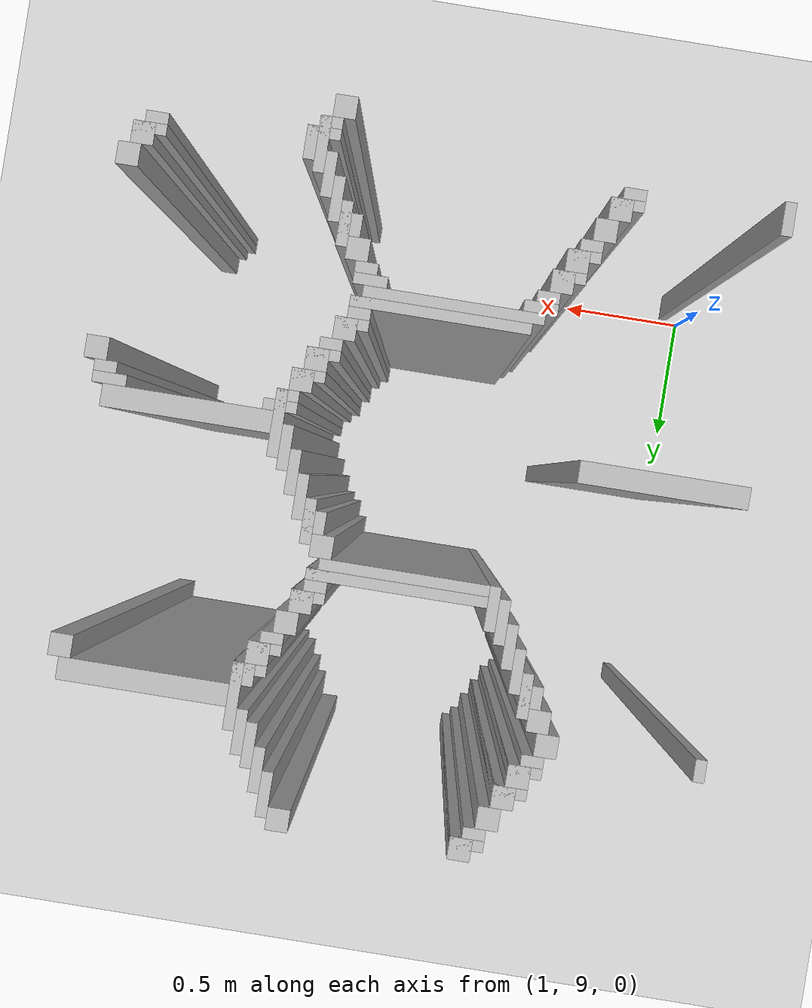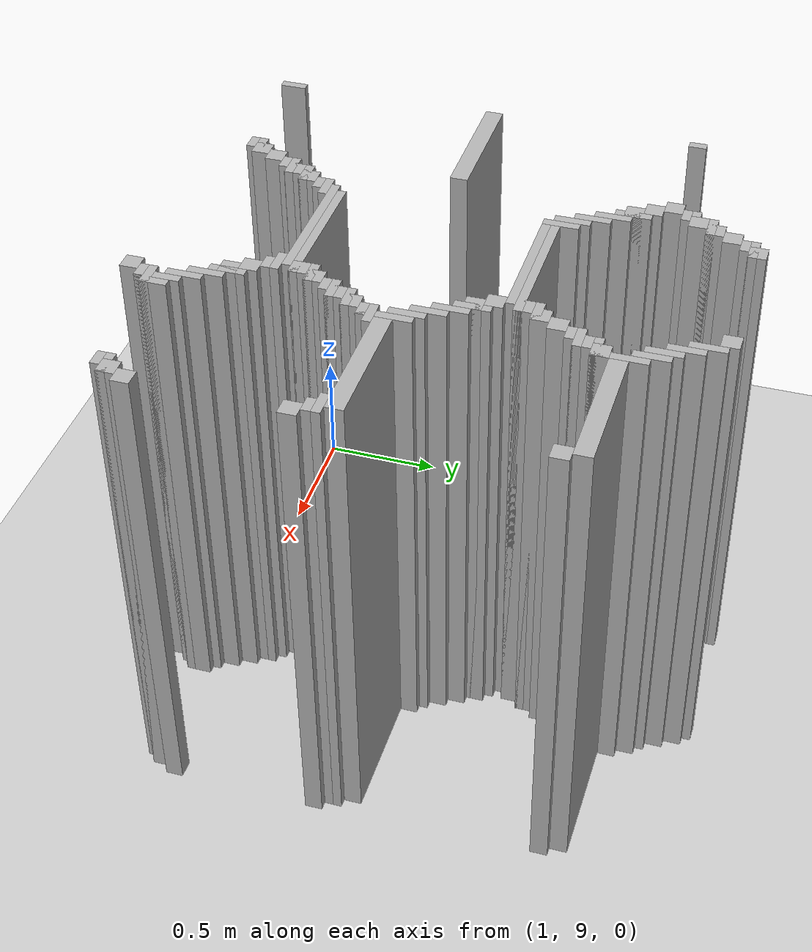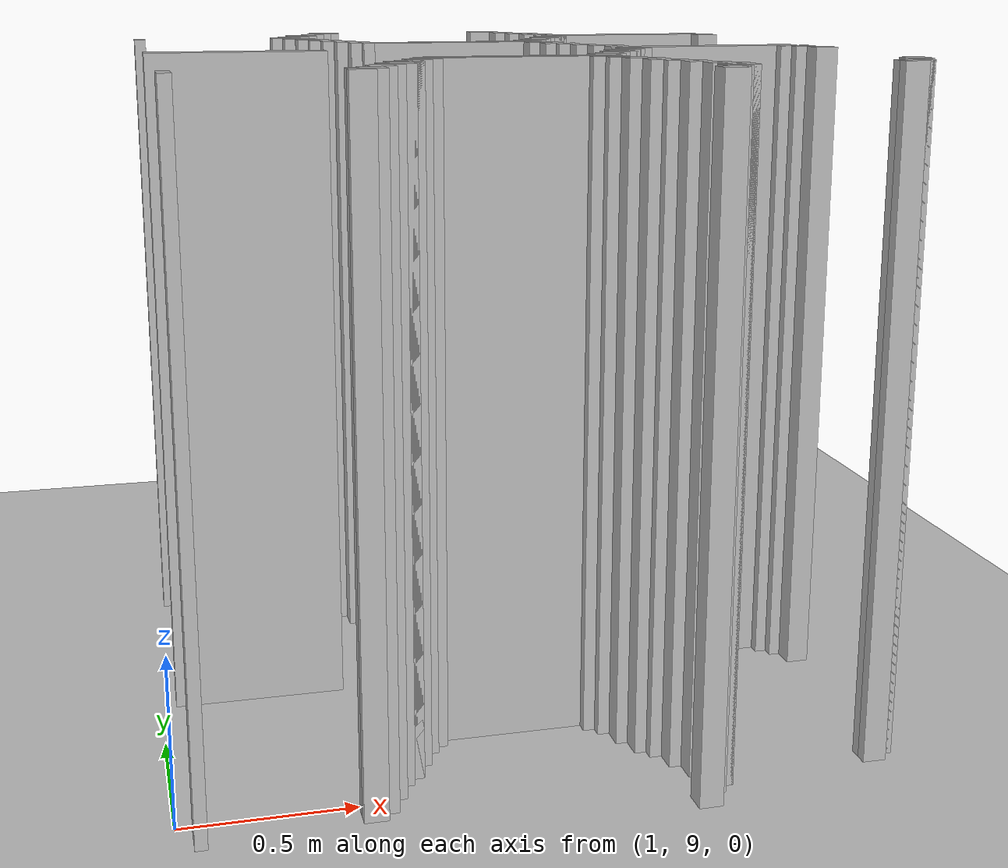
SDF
<sdf version="1.6">
 <world name="slam_world">
  <model name="ground_plane">
   <static>true</static>
   <link name="link">
    <collision name="collision">
     <geometry><plane><normal>0 0 1</normal><size>100 100</size></plane></geometry>
    </collision>
    <visual name="visual">
     <geometry><plane><normal>0 0 1</normal><size>100 100</size></plane></geometry>
     <material>
      <ambient>0.8 0.8 0.8 1</ambient>
      <diffuse>0.8 0.8 0.8 1</diffuse>
      <specular>0.8 0.8 0.8 1</specular>
     </material>
    </visual>
   </link>
  </model>
  <model name="wall_2175">
   <static>true</static>
   <pose>1.740139211136891 10.962877030162412 1.0 0 0 0</pose>
   <link name="link">
    <collision name="collision">
     <geometry><box><size>0.06960556844547564 0.06960556844547564 2.0</size></box></geometry>
    </collision>
    <visual name="visual">
     <geometry><box><size>0.06960556844547564 0.06960556844547564 2.0</size></box></geometry>
     <material><ambient>0.5 0.5 0.5 1</ambient><diffuse>0.7 0.7 0.7 1</diffuse></material>
    </visual>
   </link>
  </model>
  <model name="wall_2176">
   <static>true</static>
   <pose>2.296983758700696 10.962877030162412 1.0 0 0 0</pose>
   <link name="link">
    <collision name="collision">
     <geometry><box><size>0.06960556844547564 0.06960556844547564 2.0</size></box></geometry>
    </collision>
    <visual name="visual">
     <geometry><box><size>0.06960556844547564 0.06960556844547564 2.0</size></box></geometry>
     <material><ambient>0.5 0.5 0.5 1</ambient><diffuse>0.7 0.7 0.7 1</diffuse></material>
    </visual>
   </link>
  </model>
  <model name="wall_2190">
   <static>true</static>
   <pose>1.722737819025522 10.945475638051043 1.0 0 0 0</pose>
   <link name="link">
    <collision name="collision">
     <geometry><box><size>0.10440835266821345 0.03480278422273782 2.0</size></box></geometry>
    </collision>
    <visual name="visual">
     <geometry><box><size>0.10440835266821345 0.03480278422273782 2.0</size></box></geometry>
     <material><ambient>0.5 0.5 0.5 1</ambient><diffuse>0.7 0.7 0.7 1</diffuse></material>
    </visual>
   </link>
  </model>
  <model name="wall_2191">
   <static>true</static>
   <pose>2.3491879350348026 10.893271461716937 1.0 0 0 0</pose>
   <link name="link">
    <collision name="collision">
     <geometry><box><size>0.03480278422273782 0.13921113689095127 2.0</size></box></geometry>
    </collision>
    <visual name="visual">
     <geometry><box><size>0.03480278422273782 0.13921113689095127 2.0</size></box></geometry>
     <material><ambient>0.5 0.5 0.5 1</ambient><diffuse>0.7 0.7 0.7 1</diffuse></material>
    </visual>
   </link>
  </model>
  <model name="wall_2205">
   <static>true</static>
   <pose>1.705336426914153 10.910672853828306 1.0 0 0 0</pose>
   <link name="link">
    <collision name="collision">
     <geometry><box><size>0.06960556844547564 0.03480278422273782 2.0</size></box></geometry>
    </collision>
    <visual name="visual">
     <geometry><box><size>0.06960556844547564 0.03480278422273782 2.0</size></box></geometry>
     <material><ambient>0.5 0.5 0.5 1</ambient><diffuse>0.7 0.7 0.7 1</diffuse></material>
    </visual>
   </link>
  </model>
  <model name="wall_2215">
   <static>true</static>
   <pose>1.6705336426914152 10.8584686774942 1.0 0 0 0</pose>
   <link name="link">
    <collision name="collision">
     <geometry><box><size>0.06960556844547564 0.06960556844547564 2.0</size></box></geometry>
    </collision>
    <visual name="visual">
     <geometry><box><size>0.06960556844547564 0.06960556844547564 2.0</size></box></geometry>
     <material><ambient>0.5 0.5 0.5 1</ambient><diffuse>0.7 0.7 0.7 1</diffuse></material>
    </visual>
   </link>
  </model>
  <model name="wall_2216">
   <static>true</static>
   <pose>2.3839907192575405 10.82366589327146 1.0 0 0 0</pose>
   <link name="link">
    <collision name="collision">
     <geometry><box><size>0.03480278422273782 0.13921113689095127 2.0</size></box></geometry>
    </collision>
    <visual name="visual">
     <geometry><box><size>0.03480278422273782 0.13921113689095127 2.0</size></box></geometry>
     <material><ambient>0.5 0.5 0.5 1</ambient><diffuse>0.7 0.7 0.7 1</diffuse></material>
    </visual>
   </link>
  </model>
  <model name="wall_2230">
   <static>true</static>
   <pose>1.6357308584686774 10.788863109048723 1.0 0 0 0</pose>
   <link name="link">
    <collision name="collision">
     <geometry><box><size>0.06960556844547564 0.06960556844547564 2.0</size></box></geometry>
    </collision>
    <visual name="visual">
     <geometry><box><size>0.06960556844547564 0.06960556844547564 2.0</size></box></geometry>
     <material><ambient>0.5 0.5 0.5 1</ambient><diffuse>0.7 0.7 0.7 1</diffuse></material>
    </visual>
   </link>
  </model>
  <model name="wall_2231">
   <static>true</static>
   <pose>2.4187935034802783 10.754060324825986 1.0 0 0 0</pose>
   <link name="link">
    <collision name="collision">
     <geometry><box><size>0.03480278422273782 0.13921113689095127 2.0</size></box></geometry>
    </collision>
    <visual name="visual">
     <geometry><box><size>0.03480278422273782 0.13921113689095127 2.0</size></box></geometry>
     <material><ambient>0.5 0.5 0.5 1</ambient><diffuse>0.7 0.7 0.7 1</diffuse></material>
    </visual>
   </link>
  </model>
  <model name="wall_2245">
   <static>true</static>
   <pose>1.6183294663573085 10.771461716937354 1.0 0 0 0</pose>
   <link name="link">
    <collision name="collision">
     <geometry><box><size>0.10440835266821345 0.03480278422273782 2.0</size></box></geometry>
    </collision>
    <visual name="visual">
     <geometry><box><size>0.10440835266821345 0.03480278422273782 2.0</size></box></geometry>
     <material><ambient>0.5 0.5 0.5 1</ambient><diffuse>0.7 0.7 0.7 1</diffuse></material>
    </visual>
   </link>
  </model>
  <model name="wall_2246">
   <static>true</static>
   <pose>2.453596287703016 10.719257540603248 1.0 0 0 0</pose>
   <link name="link">
    <collision name="collision">
     <geometry><box><size>0.03480278422273782 0.13921113689095127 2.0</size></box></geometry>
    </collision>
    <visual name="visual">
     <geometry><box><size>0.03480278422273782 0.13921113689095127 2.0</size></box></geometry>
     <material><ambient>0.5 0.5 0.5 1</ambient><diffuse>0.7 0.7 0.7 1</diffuse></material>
    </visual>
   </link>
  </model>
  <model name="wall_2259">
   <static>true</static>
   <pose>1.6009280742459395 10.719257540603248 1.0 0 0 0</pose>
   <link name="link">
    <collision name="collision">
     <geometry><box><size>0.06960556844547564 0.06960556844547564 2.0</size></box></geometry>
    </collision>
    <visual name="visual">
     <geometry><box><size>0.06960556844547564 0.06960556844547564 2.0</size></box></geometry>
     <material><ambient>0.5 0.5 0.5 1</ambient><diffuse>0.7 0.7 0.7 1</diffuse></material>
    </visual>
   </link>
  </model>
  <model name="wall_2267">
   <static>true</static>
   <pose>1.5835266821345706 10.70185614849188 1.0 0 0 0</pose>
   <link name="link">
    <collision name="collision">
     <geometry><box><size>0.10440835266821345 0.03480278422273782 2.0</size></box></geometry>
    </collision>
    <visual name="visual">
     <geometry><box><size>0.10440835266821345 0.03480278422273782 2.0</size></box></geometry>
     <material><ambient>0.5 0.5 0.5 1</ambient><diffuse>0.7 0.7 0.7 1</diffuse></material>
    </visual>
   </link>
  </model>
  <model name="wall_2268">
   <static>true</static>
   <pose>2.488399071925754 10.614849187935034 1.0 0 0 0</pose>
   <link name="link">
    <collision name="collision">
     <geometry><box><size>0.03480278422273782 0.2088167053364269 2.0</size></box></geometry>
    </collision>
    <visual name="visual">
     <geometry><box><size>0.03480278422273782 0.2088167053364269 2.0</size></box></geometry>
     <material><ambient>0.5 0.5 0.5 1</ambient><diffuse>0.7 0.7 0.7 1</diffuse></material>
    </visual>
   </link>
  </model>
  <model name="wall_2281">
   <static>true</static>
   <pose>1.5661252900232019 10.66705336426914 1.0 0 0 0</pose>
   <link name="link">
    <collision name="collision">
     <geometry><box><size>0.06960556844547564 0.03480278422273782 2.0</size></box></geometry>
    </collision>
    <visual name="visual">
     <geometry><box><size>0.06960556844547564 0.03480278422273782 2.0</size></box></geometry>
     <material><ambient>0.5 0.5 0.5 1</ambient><diffuse>0.7 0.7 0.7 1</diffuse></material>
    </visual>
   </link>
  </model>
  <model name="wall_2288">
   <static>true</static>
   <pose>1.0614849187935034 10.614849187935034 1.0 0 0 0</pose>
   <link name="link">
    <collision name="collision">
     <geometry><box><size>0.03480278422273782 0.06960556844547564 2.0</size></box></geometry>
    </collision>
    <visual name="visual">
     <geometry><box><size>0.03480278422273782 0.06960556844547564 2.0</size></box></geometry>
     <material><ambient>0.5 0.5 0.5 1</ambient><diffuse>0.7 0.7 0.7 1</diffuse></material>
    </visual>
   </link>
  </model>
  <model name="wall_2289">
   <static>true</static>
   <pose>1.531322505800464 10.614849187935034 1.0 0 0 0</pose>
   <link name="link">
    <collision name="collision">
     <geometry><box><size>0.06960556844547564 0.06960556844547564 2.0</size></box></geometry>
    </collision>
    <visual name="visual">
     <geometry><box><size>0.06960556844547564 0.06960556844547564 2.0</size></box></geometry>
     <material><ambient>0.5 0.5 0.5 1</ambient><diffuse>0.7 0.7 0.7 1</diffuse></material>
    </visual>
   </link>
  </model>
  <model name="wall_2290">
   <static>true</static>
   <pose>2.7668213457076565 10.614849187935034 1.0 0 0 0</pose>
   <link name="link">
    <collision name="collision">
     <geometry><box><size>0.5220417633410672 0.06960556844547564 2.0</size></box></geometry>
    </collision>
    <visual name="visual">
     <geometry><box><size>0.5220417633410672 0.06960556844547564 2.0</size></box></geometry>
     <material><ambient>0.5 0.5 0.5 1</ambient><diffuse>0.7 0.7 0.7 1</diffuse></material>
    </visual>
   </link>
  </model>
  <model name="wall_2303">
   <static>true</static>
   <pose>1.5661252900232019 10.54524361948956 1.0 0 0 0</pose>
   <link name="link">
    <collision name="collision">
     <geometry><box><size>0.06960556844547564 0.06960556844547564 2.0</size></box></geometry>
    </collision>
    <visual name="visual">
     <geometry><box><size>0.06960556844547564 0.06960556844547564 2.0</size></box></geometry>
     <material><ambient>0.5 0.5 0.5 1</ambient><diffuse>0.7 0.7 0.7 1</diffuse></material>
    </visual>
   </link>
  </model>
  <model name="wall_2304">
   <static>true</static>
   <pose>2.470997679814385 10.54524361948956 1.0 0 0 0</pose>
   <link name="link">
    <collision name="collision">
     <geometry><box><size>0.06960556844547564 0.06960556844547564 2.0</size></box></geometry>
    </collision>
    <visual name="visual">
     <geometry><box><size>0.06960556844547564 0.06960556844547564 2.0</size></box></geometry>
     <material><ambient>0.5 0.5 0.5 1</ambient><diffuse>0.7 0.7 0.7 1</diffuse></material>
    </visual>
   </link>
  </model>
  <model name="wall_2305">
   <static>true</static>
   <pose>3.02784222737819 10.54524361948956 1.0 0 0 0</pose>
   <link name="link">
    <collision name="collision">
     <geometry><box><size>0.06960556844547564 0.06960556844547564 2.0</size></box></geometry>
    </collision>
    <visual name="visual">
     <geometry><box><size>0.06960556844547564 0.06960556844547564 2.0</size></box></geometry>
     <material><ambient>0.5 0.5 0.5 1</ambient><diffuse>0.7 0.7 0.7 1</diffuse></material>
    </visual>
   </link>
  </model>
  <model name="wall_2318">
   <static>true</static>
   <pose>1.6183294663573085 10.475638051044083 1.0 0 0 0</pose>
   <link name="link">
    <collision name="collision">
     <geometry><box><size>0.03480278422273782 0.13921113689095127 2.0</size></box></geometry>
    </collision>
    <visual name="visual">
     <geometry><box><size>0.03480278422273782 0.13921113689095127 2.0</size></box></geometry>
     <material><ambient>0.5 0.5 0.5 1</ambient><diffuse>0.7 0.7 0.7 1</diffuse></material>
    </visual>
   </link>
  </model>
  <model name="wall_2319">
   <static>true</static>
   <pose>2.453596287703016 10.52784222737819 1.0 0 0 0</pose>
   <link name="link">
    <collision name="collision">
     <geometry><box><size>0.10440835266821345 0.03480278422273782 2.0</size></box></geometry>
    </collision>
    <visual name="visual">
     <geometry><box><size>0.10440835266821345 0.03480278422273782 2.0</size></box></geometry>
     <material><ambient>0.5 0.5 0.5 1</ambient><diffuse>0.7 0.7 0.7 1</diffuse></material>
    </visual>
   </link>
  </model>
  <model name="wall_2333">
   <static>true</static>
   <pose>1.6009280742459395 10.475638051044083 1.0 0 0 0</pose>
   <link name="link">
    <collision name="collision">
     <geometry><box><size>0.06960556844547564 0.06960556844547564 2.0</size></box></geometry>
    </collision>
    <visual name="visual">
     <geometry><box><size>0.06960556844547564 0.06960556844547564 2.0</size></box></geometry>
     <material><ambient>0.5 0.5 0.5 1</ambient><diffuse>0.7 0.7 0.7 1</diffuse></material>
    </visual>
   </link>
  </model>
  <model name="wall_2334">
   <static>true</static>
   <pose>2.436194895591647 10.475638051044083 1.0 0 0 0</pose>
   <link name="link">
    <collision name="collision">
     <geometry><box><size>0.06960556844547564 0.06960556844547564 2.0</size></box></geometry>
    </collision>
    <visual name="visual">
     <geometry><box><size>0.06960556844547564 0.06960556844547564 2.0</size></box></geometry>
     <material><ambient>0.5 0.5 0.5 1</ambient><diffuse>0.7 0.7 0.7 1</diffuse></material>
    </visual>
   </link>
  </model>
  <model name="wall_2348">
   <static>true</static>
   <pose>1.6531322505800463 10.406032482598608 1.0 0 0 0</pose>
   <link name="link">
    <collision name="collision">
     <geometry><box><size>0.03480278422273782 0.13921113689095127 2.0</size></box></geometry>
    </collision>
    <visual name="visual">
     <geometry><box><size>0.03480278422273782 0.13921113689095127 2.0</size></box></geometry>
     <material><ambient>0.5 0.5 0.5 1</ambient><diffuse>0.7 0.7 0.7 1</diffuse></material>
    </visual>
   </link>
  </model>
  <model name="wall_2349">
   <static>true</static>
   <pose>2.4187935034802783 10.458236658932714 1.0 0 0 0</pose>
   <link name="link">
    <collision name="collision">
     <geometry><box><size>0.10440835266821345 0.03480278422273782 2.0</size></box></geometry>
    </collision>
    <visual name="visual">
     <geometry><box><size>0.10440835266821345 0.03480278422273782 2.0</size></box></geometry>
     <material><ambient>0.5 0.5 0.5 1</ambient><diffuse>0.7 0.7 0.7 1</diffuse></material>
    </visual>
   </link>
  </model>
  <model name="wall_2362">
   <static>true</static>
   <pose>2.4013921113689096 10.423433874709977 1.0 0 0 0</pose>
   <link name="link">
    <collision name="collision">
     <geometry><box><size>0.06960556844547564 0.03480278422273782 2.0</size></box></geometry>
    </collision>
    <visual name="visual">
     <geometry><box><size>0.06960556844547564 0.03480278422273782 2.0</size></box></geometry>
     <material><ambient>0.5 0.5 0.5 1</ambient><diffuse>0.7 0.7 0.7 1</diffuse></material>
    </visual>
   </link>
  </model>
  <model name="wall_2368">
   <static>true</static>
   <pose>1.6879350348027842 10.336426914153131 1.0 0 0 0</pose>
   <link name="link">
    <collision name="collision">
     <geometry><box><size>0.03480278422273782 0.13921113689095127 2.0</size></box></geometry>
    </collision>
    <visual name="visual">
     <geometry><box><size>0.03480278422273782 0.13921113689095127 2.0</size></box></geometry>
     <material><ambient>0.5 0.5 0.5 1</ambient><diffuse>0.7 0.7 0.7 1</diffuse></material>
    </visual>
   </link>
  </model>
  <model name="wall_2369">
   <static>true</static>
   <pose>2.3665893271461718 10.37122969837587 1.0 0 0 0</pose>
   <link name="link">
    <collision name="collision">
     <geometry><box><size>0.06960556844547564 0.06960556844547564 2.0</size></box></geometry>
    </collision>
    <visual name="visual">
     <geometry><box><size>0.06960556844547564 0.06960556844547564 2.0</size></box></geometry>
     <material><ambient>0.5 0.5 0.5 1</ambient><diffuse>0.7 0.7 0.7 1</diffuse></material>
    </visual>
   </link>
  </model>
  <model name="wall_2383">
   <static>true</static>
   <pose>1.722737819025522 10.266821345707656 1.0 0 0 0</pose>
   <link name="link">
    <collision name="collision">
     <geometry><box><size>0.03480278422273782 0.13921113689095127 2.0</size></box></geometry>
    </collision>
    <visual name="visual">
     <geometry><box><size>0.03480278422273782 0.13921113689095127 2.0</size></box></geometry>
     <material><ambient>0.5 0.5 0.5 1</ambient><diffuse>0.7 0.7 0.7 1</diffuse></material>
    </visual>
   </link>
  </model>
  <model name="wall_2384">
   <static>true</static>
   <pose>2.331786542923434 10.301624129930394 1.0 0 0 0</pose>
   <link name="link">
    <collision name="collision">
     <geometry><box><size>0.06960556844547564 0.06960556844547564 2.0</size></box></geometry>
    </collision>
    <visual name="visual">
     <geometry><box><size>0.06960556844547564 0.06960556844547564 2.0</size></box></geometry>
     <material><ambient>0.5 0.5 0.5 1</ambient><diffuse>0.7 0.7 0.7 1</diffuse></material>
    </visual>
   </link>
  </model>
  <model name="wall_2398">
   <static>true</static>
   <pose>1.75754060324826 10.232018561484919 1.0 0 0 0</pose>
   <link name="link">
    <collision name="collision">
     <geometry><box><size>0.03480278422273782 0.13921113689095127 2.0</size></box></geometry>
    </collision>
    <visual name="visual">
     <geometry><box><size>0.03480278422273782 0.13921113689095127 2.0</size></box></geometry>
     <material><ambient>0.5 0.5 0.5 1</ambient><diffuse>0.7 0.7 0.7 1</diffuse></material>
    </visual>
   </link>
  </model>
  <model name="wall_2399">
   <static>true</static>
   <pose>2.3143851508120648 10.284222737819025 1.0 0 0 0</pose>
   <link name="link">
    <collision name="collision">
     <geometry><box><size>0.10440835266821345 0.03480278422273782 2.0</size></box></geometry>
    </collision>
    <visual name="visual">
     <geometry><box><size>0.10440835266821345 0.03480278422273782 2.0</size></box></geometry>
     <material><ambient>0.5 0.5 0.5 1</ambient><diffuse>0.7 0.7 0.7 1</diffuse></material>
    </visual>
   </link>
  </model>
  <model name="wall_2412">
   <static>true</static>
   <pose>2.296983758700696 10.232018561484919 1.0 0 0 0</pose>
   <link name="link">
    <collision name="collision">
     <geometry><box><size>0.06960556844547564 0.06960556844547564 2.0</size></box></geometry>
    </collision>
    <visual name="visual">
     <geometry><box><size>0.06960556844547564 0.06960556844547564 2.0</size></box></geometry>
     <material><ambient>0.5 0.5 0.5 1</ambient><diffuse>0.7 0.7 0.7 1</diffuse></material>
    </visual>
   </link>
  </model>
  <model name="wall_2419">
   <static>true</static>
   <pose>2.053364269141531 10.214617169373549 1.0 0 0 0</pose>
   <link name="link">
    <collision name="collision">
     <geometry><box><size>0.5568445475638051 0.03480278422273782 2.0</size></box></geometry>
    </collision>
    <visual name="visual">
     <geometry><box><size>0.5568445475638051 0.03480278422273782 2.0</size></box></geometry>
     <material><ambient>0.5 0.5 0.5 1</ambient><diffuse>0.7 0.7 0.7 1</diffuse></material>
    </visual>
   </link>
  </model>
  <model name="wall_2433">
   <static>true</static>
   <pose>2.0359628770301623 10.179814385150811 1.0 0 0 0</pose>
   <link name="link">
    <collision name="collision">
     <geometry><box><size>0.5220417633410672 0.03480278422273782 2.0</size></box></geometry>
    </collision>
    <visual name="visual">
     <geometry><box><size>0.5220417633410672 0.03480278422273782 2.0</size></box></geometry>
     <material><ambient>0.5 0.5 0.5 1</ambient><diffuse>0.7 0.7 0.7 1</diffuse></material>
    </visual>
   </link>
  </model>
  <model name="wall_2440">
   <static>true</static>
   <pose>2.296983758700696 10.127610208816705 1.0 0 0 0</pose>
   <link name="link">
    <collision name="collision">
     <geometry><box><size>0.06960556844547564 0.06960556844547564 2.0</size></box></geometry>
    </collision>
    <visual name="visual">
     <geometry><box><size>0.06960556844547564 0.06960556844547564 2.0</size></box></geometry>
     <material><ambient>0.5 0.5 0.5 1</ambient><diffuse>0.7 0.7 0.7 1</diffuse></material>
    </visual>
   </link>
  </model>
  <model name="wall_2454">
   <static>true</static>
   <pose>2.3491879350348026 10.058004640371228 1.0 0 0 0</pose>
   <link name="link">
    <collision name="collision">
     <geometry><box><size>0.03480278422273782 0.13921113689095127 2.0</size></box></geometry>
    </collision>
    <visual name="visual">
     <geometry><box><size>0.03480278422273782 0.13921113689095127 2.0</size></box></geometry>
     <material><ambient>0.5 0.5 0.5 1</ambient><diffuse>0.7 0.7 0.7 1</diffuse></material>
    </visual>
   </link>
  </model>
  <model name="wall_2468">
   <static>true</static>
   <pose>2.331786542923434 10.058004640371228 1.0 0 0 0</pose>
   <link name="link">
    <collision name="collision">
     <geometry><box><size>0.06960556844547564 0.06960556844547564 2.0</size></box></geometry>
    </collision>
    <visual name="visual">
     <geometry><box><size>0.06960556844547564 0.06960556844547564 2.0</size></box></geometry>
     <material><ambient>0.5 0.5 0.5 1</ambient><diffuse>0.7 0.7 0.7 1</diffuse></material>
    </visual>
   </link>
  </model>
  <model name="wall_2482">
   <static>true</static>
   <pose>2.3839907192575405 9.988399071925754 1.0 0 0 0</pose>
   <link name="link">
    <collision name="collision">
     <geometry><box><size>0.03480278422273782 0.13921113689095127 2.0</size></box></geometry>
    </collision>
    <visual name="visual">
     <geometry><box><size>0.03480278422273782 0.13921113689095127 2.0</size></box></geometry>
     <material><ambient>0.5 0.5 0.5 1</ambient><diffuse>0.7 0.7 0.7 1</diffuse></material>
    </visual>
   </link>
  </model>
  <model name="wall_2505">
   <static>true</static>
   <pose>2.4187935034802783 9.918793503480279 1.0 0 0 0</pose>
   <link name="link">
    <collision name="collision">
     <geometry><box><size>0.03480278422273782 0.13921113689095127 2.0</size></box></geometry>
    </collision>
    <visual name="visual">
     <geometry><box><size>0.03480278422273782 0.13921113689095127 2.0</size></box></geometry>
     <material><ambient>0.5 0.5 0.5 1</ambient><diffuse>0.7 0.7 0.7 1</diffuse></material>
    </visual>
   </link>
  </model>
  <model name="wall_2519">
   <static>true</static>
   <pose>2.453596287703016 9.849187935034802 1.0 0 0 0</pose>
   <link name="link">
    <collision name="collision">
     <geometry><box><size>0.03480278422273782 0.13921113689095127 2.0</size></box></geometry>
    </collision>
    <visual name="visual">
     <geometry><box><size>0.03480278422273782 0.13921113689095127 2.0</size></box></geometry>
     <material><ambient>0.5 0.5 0.5 1</ambient><diffuse>0.7 0.7 0.7 1</diffuse></material>
    </visual>
   </link>
  </model>
  <model name="wall_2533">
   <static>true</static>
   <pose>2.488399071925754 9.779582366589327 1.0 0 0 0</pose>
   <link name="link">
    <collision name="collision">
     <geometry><box><size>0.03480278422273782 0.2088167053364269 2.0</size></box></geometry>
    </collision>
    <visual name="visual">
     <geometry><box><size>0.03480278422273782 0.2088167053364269 2.0</size></box></geometry>
     <material><ambient>0.5 0.5 0.5 1</ambient><diffuse>0.7 0.7 0.7 1</diffuse></material>
    </visual>
   </link>
  </model>
  <model name="wall_2555">
   <static>true</static>
   <pose>1.3051044083526682 9.779582366589327 1.0 0 0 0</pose>
   <link name="link">
    <collision name="collision">
     <geometry><box><size>0.5220417633410672 0.06960556844547564 2.0</size></box></geometry>
    </collision>
    <visual name="visual">
     <geometry><box><size>0.5220417633410672 0.06960556844547564 2.0</size></box></geometry>
     <material><ambient>0.5 0.5 0.5 1</ambient><diffuse>0.7 0.7 0.7 1</diffuse></material>
    </visual>
   </link>
  </model>
  <model name="wall_2556">
   <static>true</static>
   <pose>2.7668213457076565 9.779582366589327 1.0 0 0 0</pose>
   <link name="link">
    <collision name="collision">
     <geometry><box><size>0.5220417633410672 0.06960556844547564 2.0</size></box></geometry>
    </collision>
    <visual name="visual">
     <geometry><box><size>0.5220417633410672 0.06960556844547564 2.0</size></box></geometry>
     <material><ambient>0.5 0.5 0.5 1</ambient><diffuse>0.7 0.7 0.7 1</diffuse></material>
    </visual>
   </link>
  </model>
  <model name="wall_2577">
   <static>true</static>
   <pose>2.488399071925754 9.72737819025522 1.0 0 0 0</pose>
   <link name="link">
    <collision name="collision">
     <geometry><box><size>0.10440835266821345 0.03480278422273782 2.0</size></box></geometry>
    </collision>
    <visual name="visual">
     <geometry><box><size>0.10440835266821345 0.03480278422273782 2.0</size></box></geometry>
     <material><ambient>0.5 0.5 0.5 1</ambient><diffuse>0.7 0.7 0.7 1</diffuse></material>
    </visual>
   </link>
  </model>
  <model name="wall_2578">
   <static>true</static>
   <pose>3.010440835266821 9.72737819025522 1.0 0 0 0</pose>
   <link name="link">
    <collision name="collision">
     <geometry><box><size>0.10440835266821345 0.03480278422273782 2.0</size></box></geometry>
    </collision>
    <visual name="visual">
     <geometry><box><size>0.10440835266821345 0.03480278422273782 2.0</size></box></geometry>
     <material><ambient>0.5 0.5 0.5 1</ambient><diffuse>0.7 0.7 0.7 1</diffuse></material>
    </visual>
   </link>
  </model>
  <model name="wall_2590">
   <static>true</static>
   <pose>2.470997679814385 9.692575406032482 1.0 0 0 0</pose>
   <link name="link">
    <collision name="collision">
     <geometry><box><size>0.06960556844547564 0.03480278422273782 2.0</size></box></geometry>
    </collision>
    <visual name="visual">
     <geometry><box><size>0.06960556844547564 0.03480278422273782 2.0</size></box></geometry>
     <material><ambient>0.5 0.5 0.5 1</ambient><diffuse>0.7 0.7 0.7 1</diffuse></material>
    </visual>
   </link>
  </model>
  <model name="wall_2591">
   <static>true</static>
   <pose>3.02784222737819 9.692575406032482 1.0 0 0 0</pose>
   <link name="link">
    <collision name="collision">
     <geometry><box><size>0.06960556844547564 0.03480278422273782 2.0</size></box></geometry>
    </collision>
    <visual name="visual">
     <geometry><box><size>0.06960556844547564 0.03480278422273782 2.0</size></box></geometry>
     <material><ambient>0.5 0.5 0.5 1</ambient><diffuse>0.7 0.7 0.7 1</diffuse></material>
    </visual>
   </link>
  </model>
  <model name="wall_2602">
   <static>true</static>
   <pose>2.436194895591647 9.640371229698376 1.0 0 0 0</pose>
   <link name="link">
    <collision name="collision">
     <geometry><box><size>0.06960556844547564 0.06960556844547564 2.0</size></box></geometry>
    </collision>
    <visual name="visual">
     <geometry><box><size>0.06960556844547564 0.06960556844547564 2.0</size></box></geometry>
     <material><ambient>0.5 0.5 0.5 1</ambient><diffuse>0.7 0.7 0.7 1</diffuse></material>
    </visual>
   </link>
  </model>
  <model name="wall_2603">
   <static>true</static>
   <pose>3.062645011600928 9.640371229698376 1.0 0 0 0</pose>
   <link name="link">
    <collision name="collision">
     <geometry><box><size>0.06960556844547564 0.06960556844547564 2.0</size></box></geometry>
    </collision>
    <visual name="visual">
     <geometry><box><size>0.06960556844547564 0.06960556844547564 2.0</size></box></geometry>
     <material><ambient>0.5 0.5 0.5 1</ambient><diffuse>0.7 0.7 0.7 1</diffuse></material>
    </visual>
   </link>
  </model>
  <model name="wall_2616">
   <static>true</static>
   <pose>2.4187935034802783 9.622969837587007 1.0 0 0 0</pose>
   <link name="link">
    <collision name="collision">
     <geometry><box><size>0.10440835266821345 0.03480278422273782 2.0</size></box></geometry>
    </collision>
    <visual name="visual">
     <geometry><box><size>0.10440835266821345 0.03480278422273782 2.0</size></box></geometry>
     <material><ambient>0.5 0.5 0.5 1</ambient><diffuse>0.7 0.7 0.7 1</diffuse></material>
    </visual>
   </link>
  </model>
  <model name="wall_2630">
   <static>true</static>
   <pose>2.4013921113689096 9.5707656612529 1.0 0 0 0</pose>
   <link name="link">
    <collision name="collision">
     <geometry><box><size>0.06960556844547564 0.06960556844547564 2.0</size></box></geometry>
    </collision>
    <visual name="visual">
     <geometry><box><size>0.06960556844547564 0.06960556844547564 2.0</size></box></geometry>
     <material><ambient>0.5 0.5 0.5 1</ambient><diffuse>0.7 0.7 0.7 1</diffuse></material>
    </visual>
   </link>
  </model>
  <model name="wall_2644">
   <static>true</static>
   <pose>2.3839907192575405 9.55336426914153 1.0 0 0 0</pose>
   <link name="link">
    <collision name="collision">
     <geometry><box><size>0.10440835266821345 0.03480278422273782 2.0</size></box></geometry>
    </collision>
    <visual name="visual">
     <geometry><box><size>0.10440835266821345 0.03480278422273782 2.0</size></box></geometry>
     <material><ambient>0.5 0.5 0.5 1</ambient><diffuse>0.7 0.7 0.7 1</diffuse></material>
    </visual>
   </link>
  </model>
  <model name="wall_2657">
   <static>true</static>
   <pose>2.3665893271461718 9.518561484918793 1.0 0 0 0</pose>
   <link name="link">
    <collision name="collision">
     <geometry><box><size>0.06960556844547564 0.03480278422273782 2.0</size></box></geometry>
    </collision>
    <visual name="visual">
     <geometry><box><size>0.06960556844547564 0.03480278422273782 2.0</size></box></geometry>
     <material><ambient>0.5 0.5 0.5 1</ambient><diffuse>0.7 0.7 0.7 1</diffuse></material>
    </visual>
   </link>
  </model>
  <model name="wall_2663">
   <static>true</static>
   <pose>2.331786542923434 9.466357308584687 1.0 0 0 0</pose>
   <link name="link">
    <collision name="collision">
     <geometry><box><size>0.06960556844547564 0.06960556844547564 2.0</size></box></geometry>
    </collision>
    <visual name="visual">
     <geometry><box><size>0.06960556844547564 0.06960556844547564 2.0</size></box></geometry>
     <material><ambient>0.5 0.5 0.5 1</ambient><diffuse>0.7 0.7 0.7 1</diffuse></material>
    </visual>
   </link>
  </model>
  <model name="wall_2677">
   <static>true</static>
   <pose>2.3143851508120648 9.448955916473318 1.0 0 0 0</pose>
   <link name="link">
    <collision name="collision">
     <geometry><box><size>0.10440835266821345 0.03480278422273782 2.0</size></box></geometry>
    </collision>
    <visual name="visual">
     <geometry><box><size>0.10440835266821345 0.03480278422273782 2.0</size></box></geometry>
     <material><ambient>0.5 0.5 0.5 1</ambient><diffuse>0.7 0.7 0.7 1</diffuse></material>
    </visual>
   </link>
  </model>
  <model name="wall_2690">
   <static>true</static>
   <pose>2.296983758700696 9.39675174013921 1.0 0 0 0</pose>
   <link name="link">
    <collision name="collision">
     <geometry><box><size>0.06960556844547564 0.06960556844547564 2.0</size></box></geometry>
    </collision>
    <visual name="visual">
     <geometry><box><size>0.06960556844547564 0.06960556844547564 2.0</size></box></geometry>
     <material><ambient>0.5 0.5 0.5 1</ambient><diffuse>0.7 0.7 0.7 1</diffuse></material>
    </visual>
   </link>
  </model>
  <model name="wall_2695">
   <static>true</static>
   <pose>2.053364269141531 9.379350348027842 1.0 0 0 0</pose>
   <link name="link">
    <collision name="collision">
     <geometry><box><size>0.5568445475638051 0.03480278422273782 2.0</size></box></geometry>
    </collision>
    <visual name="visual">
     <geometry><box><size>0.5568445475638051 0.03480278422273782 2.0</size></box></geometry>
     <material><ambient>0.5 0.5 0.5 1</ambient><diffuse>0.7 0.7 0.7 1</diffuse></material>
    </visual>
   </link>
  </model>
  <model name="wall_2708">
   <static>true</static>
   <pose>2.0185614849187936 9.344547563805104 1.0 0 0 0</pose>
   <link name="link">
    <collision name="collision">
     <geometry><box><size>0.5568445475638051 0.03480278422273782 2.0</size></box></geometry>
    </collision>
    <visual name="visual">
     <geometry><box><size>0.5568445475638051 0.03480278422273782 2.0</size></box></geometry>
     <material><ambient>0.5 0.5 0.5 1</ambient><diffuse>0.7 0.7 0.7 1</diffuse></material>
    </visual>
   </link>
  </model>
  <model name="wall_2719">
   <static>true</static>
   <pose>1.75754060324826 9.309744779582367 1.0 0 0 0</pose>
   <link name="link">
    <collision name="collision">
     <geometry><box><size>0.10440835266821345 0.03480278422273782 2.0</size></box></geometry>
    </collision>
    <visual name="visual">
     <geometry><box><size>0.10440835266821345 0.03480278422273782 2.0</size></box></geometry>
     <material><ambient>0.5 0.5 0.5 1</ambient><diffuse>0.7 0.7 0.7 1</diffuse></material>
    </visual>
   </link>
  </model>
  <model name="wall_2720">
   <static>true</static>
   <pose>2.279582366589327 9.309744779582367 1.0 0 0 0</pose>
   <link name="link">
    <collision name="collision">
     <geometry><box><size>0.10440835266821345 0.03480278422273782 2.0</size></box></geometry>
    </collision>
    <visual name="visual">
     <geometry><box><size>0.10440835266821345 0.03480278422273782 2.0</size></box></geometry>
     <material><ambient>0.5 0.5 0.5 1</ambient><diffuse>0.7 0.7 0.7 1</diffuse></material>
    </visual>
   </link>
  </model>
  <model name="wall_2735">
   <static>true</static>
   <pose>1.740139211136891 9.274941995359628 1.0 0 0 0</pose>
   <link name="link">
    <collision name="collision">
     <geometry><box><size>0.06960556844547564 0.03480278422273782 2.0</size></box></geometry>
    </collision>
    <visual name="visual">
     <geometry><box><size>0.06960556844547564 0.03480278422273782 2.0</size></box></geometry>
     <material><ambient>0.5 0.5 0.5 1</ambient><diffuse>0.7 0.7 0.7 1</diffuse></material>
    </visual>
   </link>
  </model>
  <model name="wall_2736">
   <static>true</static>
   <pose>2.296983758700696 9.274941995359628 1.0 0 0 0</pose>
   <link name="link">
    <collision name="collision">
     <geometry><box><size>0.06960556844547564 0.03480278422273782 2.0</size></box></geometry>
    </collision>
    <visual name="visual">
     <geometry><box><size>0.06960556844547564 0.03480278422273782 2.0</size></box></geometry>
     <material><ambient>0.5 0.5 0.5 1</ambient><diffuse>0.7 0.7 0.7 1</diffuse></material>
    </visual>
   </link>
  </model>
  <model name="wall_2748">
   <static>true</static>
   <pose>1.705336426914153 9.222737819025522 1.0 0 0 0</pose>
   <link name="link">
    <collision name="collision">
     <geometry><box><size>0.06960556844547564 0.06960556844547564 2.0</size></box></geometry>
    </collision>
    <visual name="visual">
     <geometry><box><size>0.06960556844547564 0.06960556844547564 2.0</size></box></geometry>
     <material><ambient>0.5 0.5 0.5 1</ambient><diffuse>0.7 0.7 0.7 1</diffuse></material>
    </visual>
   </link>
  </model>
  <model name="wall_2749">
   <static>true</static>
   <pose>2.331786542923434 9.222737819025522 1.0 0 0 0</pose>
   <link name="link">
    <collision name="collision">
     <geometry><box><size>0.06960556844547564 0.06960556844547564 2.0</size></box></geometry>
    </collision>
    <visual name="visual">
     <geometry><box><size>0.06960556844547564 0.06960556844547564 2.0</size></box></geometry>
     <material><ambient>0.5 0.5 0.5 1</ambient><diffuse>0.7 0.7 0.7 1</diffuse></material>
    </visual>
   </link>
  </model>
  <model name="wall_2764">
   <static>true</static>
   <pose>1.6879350348027842 9.205336426914153 1.0 0 0 0</pose>
   <link name="link">
    <collision name="collision">
     <geometry><box><size>0.10440835266821345 0.03480278422273782 2.0</size></box></geometry>
    </collision>
    <visual name="visual">
     <geometry><box><size>0.10440835266821345 0.03480278422273782 2.0</size></box></geometry>
     <material><ambient>0.5 0.5 0.5 1</ambient><diffuse>0.7 0.7 0.7 1</diffuse></material>
    </visual>
   </link>
  </model>
  <model name="wall_2765">
   <static>true</static>
   <pose>2.3839907192575405 9.153132250580047 1.0 0 0 0</pose>
   <link name="link">
    <collision name="collision">
     <geometry><box><size>0.03480278422273782 0.13921113689095127 2.0</size></box></geometry>
    </collision>
    <visual name="visual">
     <geometry><box><size>0.03480278422273782 0.13921113689095127 2.0</size></box></geometry>
     <material><ambient>0.5 0.5 0.5 1</ambient><diffuse>0.7 0.7 0.7 1</diffuse></material>
    </visual>
   </link>
  </model>
  <model name="wall_2780">
   <static>true</static>
   <pose>1.6705336426914152 9.153132250580047 1.0 0 0 0</pose>
   <link name="link">
    <collision name="collision">
     <geometry><box><size>0.06960556844547564 0.06960556844547564 2.0</size></box></geometry>
    </collision>
    <visual name="visual">
     <geometry><box><size>0.06960556844547564 0.06960556844547564 2.0</size></box></geometry>
     <material><ambient>0.5 0.5 0.5 1</ambient><diffuse>0.7 0.7 0.7 1</diffuse></material>
    </visual>
   </link>
  </model>
  <model name="wall_2781">
   <static>true</static>
   <pose>2.3665893271461718 9.153132250580047 1.0 0 0 0</pose>
   <link name="link">
    <collision name="collision">
     <geometry><box><size>0.06960556844547564 0.06960556844547564 2.0</size></box></geometry>
    </collision>
    <visual name="visual">
     <geometry><box><size>0.06960556844547564 0.06960556844547564 2.0</size></box></geometry>
     <material><ambient>0.5 0.5 0.5 1</ambient><diffuse>0.7 0.7 0.7 1</diffuse></material>
    </visual>
   </link>
  </model>
  <model name="wall_2792">
   <static>true</static>
   <pose>1.6531322505800463 9.135730858468676 1.0 0 0 0</pose>
   <link name="link">
    <collision name="collision">
     <geometry><box><size>0.10440835266821345 0.03480278422273782 2.0</size></box></geometry>
    </collision>
    <visual name="visual">
     <geometry><box><size>0.10440835266821345 0.03480278422273782 2.0</size></box></geometry>
     <material><ambient>0.5 0.5 0.5 1</ambient><diffuse>0.7 0.7 0.7 1</diffuse></material>
    </visual>
   </link>
  </model>
  <model name="wall_2793">
   <static>true</static>
   <pose>2.4187935034802783 9.08352668213457 1.0 0 0 0</pose>
   <link name="link">
    <collision name="collision">
     <geometry><box><size>0.03480278422273782 0.13921113689095127 2.0</size></box></geometry>
    </collision>
    <visual name="visual">
     <geometry><box><size>0.03480278422273782 0.13921113689095127 2.0</size></box></geometry>
     <material><ambient>0.5 0.5 0.5 1</ambient><diffuse>0.7 0.7 0.7 1</diffuse></material>
    </visual>
   </link>
  </model>
  <model name="wall_2807">
   <static>true</static>
   <pose>1.6357308584686774 9.100928074245939 1.0 0 0 0</pose>
   <link name="link">
    <collision name="collision">
     <geometry><box><size>0.06960556844547564 0.03480278422273782 2.0</size></box></geometry>
    </collision>
    <visual name="visual">
     <geometry><box><size>0.06960556844547564 0.03480278422273782 2.0</size></box></geometry>
     <material><ambient>0.5 0.5 0.5 1</ambient><diffuse>0.7 0.7 0.7 1</diffuse></material>
    </visual>
   </link>
  </model>
  <model name="wall_2817">
   <static>true</static>
   <pose>1.6009280742459395 9.048723897911833 1.0 0 0 0</pose>
   <link name="link">
    <collision name="collision">
     <geometry><box><size>0.06960556844547564 0.06960556844547564 2.0</size></box></geometry>
    </collision>
    <visual name="visual">
     <geometry><box><size>0.06960556844547564 0.06960556844547564 2.0</size></box></geometry>
     <material><ambient>0.5 0.5 0.5 1</ambient><diffuse>0.7 0.7 0.7 1</diffuse></material>
    </visual>
   </link>
  </model>
  <model name="wall_2818">
   <static>true</static>
   <pose>2.453596287703016 9.013921113689095 1.0 0 0 0</pose>
   <link name="link">
    <collision name="collision">
     <geometry><box><size>0.03480278422273782 0.13921113689095127 2.0</size></box></geometry>
    </collision>
    <visual name="visual">
     <geometry><box><size>0.03480278422273782 0.13921113689095127 2.0</size></box></geometry>
     <material><ambient>0.5 0.5 0.5 1</ambient><diffuse>0.7 0.7 0.7 1</diffuse></material>
    </visual>
   </link>
  </model>
  <model name="wall_2819">
   <static>true</static>
   <pose>3.062645011600928 9.048723897911833 1.0 0 0 0</pose>
   <link name="link">
    <collision name="collision">
     <geometry><box><size>0.06960556844547564 0.06960556844547564 2.0</size></box></geometry>
    </collision>
    <visual name="visual">
     <geometry><box><size>0.06960556844547564 0.06960556844547564 2.0</size></box></geometry>
     <material><ambient>0.5 0.5 0.5 1</ambient><diffuse>0.7 0.7 0.7 1</diffuse></material>
    </visual>
   </link>
  </model>
  <model name="wall_2833">
   <static>true</static>
   <pose>1.5661252900232019 8.979118329466356 1.0 0 0 0</pose>
   <link name="link">
    <collision name="collision">
     <geometry><box><size>0.06960556844547564 0.06960556844547564 2.0</size></box></geometry>
    </collision>
    <visual name="visual">
     <geometry><box><size>0.06960556844547564 0.06960556844547564 2.0</size></box></geometry>
     <material><ambient>0.5 0.5 0.5 1</ambient><diffuse>0.7 0.7 0.7 1</diffuse></material>
    </visual>
   </link>
  </model>
  <model name="wall_2834">
   <static>true</static>
   <pose>2.488399071925754 8.92691415313225 1.0 0 0 0</pose>
   <link name="link">
    <collision name="collision">
     <geometry><box><size>0.03480278422273782 0.17401392111368907 2.0</size></box></geometry>
    </collision>
    <visual name="visual">
     <geometry><box><size>0.03480278422273782 0.17401392111368907 2.0</size></box></geometry>
     <material><ambient>0.5 0.5 0.5 1</ambient><diffuse>0.7 0.7 0.7 1</diffuse></material>
    </visual>
   </link>
  </model>
  <model name="wall_2835">
   <static>true</static>
   <pose>3.02784222737819 8.979118329466356 1.0 0 0 0</pose>
   <link name="link">
    <collision name="collision">
     <geometry><box><size>0.06960556844547564 0.06960556844547564 2.0</size></box></geometry>
    </collision>
    <visual name="visual">
     <geometry><box><size>0.06960556844547564 0.06960556844547564 2.0</size></box></geometry>
     <material><ambient>0.5 0.5 0.5 1</ambient><diffuse>0.7 0.7 0.7 1</diffuse></material>
    </visual>
   </link>
  </model>
  <model name="wall_2848">
   <static>true</static>
   <pose>1.0614849187935034 8.92691415313225 1.0 0 0 0</pose>
   <link name="link">
    <collision name="collision">
     <geometry><box><size>0.03480278422273782 0.10440835266821345 2.0</size></box></geometry>
    </collision>
    <visual name="visual">
     <geometry><box><size>0.03480278422273782 0.10440835266821345 2.0</size></box></geometry>
     <material><ambient>0.5 0.5 0.5 1</ambient><diffuse>0.7 0.7 0.7 1</diffuse></material>
    </visual>
   </link>
  </model>
  <model name="wall_2849">
   <static>true</static>
   <pose>1.548723897911833 8.961716937354987 1.0 0 0 0</pose>
   <link name="link">
    <collision name="collision">
     <geometry><box><size>0.10440835266821345 0.03480278422273782 2.0</size></box></geometry>
    </collision>
    <visual name="visual">
     <geometry><box><size>0.10440835266821345 0.03480278422273782 2.0</size></box></geometry>
     <material><ambient>0.5 0.5 0.5 1</ambient><diffuse>0.7 0.7 0.7 1</diffuse></material>
    </visual>
   </link>
  </model>
  <model name="wall_2850">
   <static>true</static>
   <pose>2.523201856148492 8.92691415313225 1.0 0 0 0</pose>
   <link name="link">
    <collision name="collision">
     <geometry><box><size>0.03480278422273782 0.10440835266821345 2.0</size></box></geometry>
    </collision>
    <visual name="visual">
     <geometry><box><size>0.03480278422273782 0.10440835266821345 2.0</size></box></geometry>
     <material><ambient>0.5 0.5 0.5 1</ambient><diffuse>0.7 0.7 0.7 1</diffuse></material>
    </visual>
   </link>
  </model>
  <model name="wall_2851">
   <static>true</static>
   <pose>3.010440835266821 8.961716937354987 1.0 0 0 0</pose>
   <link name="link">
    <collision name="collision">
     <geometry><box><size>0.10440835266821345 0.03480278422273782 2.0</size></box></geometry>
    </collision>
    <visual name="visual">
     <geometry><box><size>0.10440835266821345 0.03480278422273782 2.0</size></box></geometry>
     <material><ambient>0.5 0.5 0.5 1</ambient><diffuse>0.7 0.7 0.7 1</diffuse></material>
    </visual>
   </link>
  </model>
  <model name="wall_2864">
   <static>true</static>
   <pose>1.531322505800464 8.92691415313225 1.0 0 0 0</pose>
   <link name="link">
    <collision name="collision">
     <geometry><box><size>0.06960556844547564 0.03480278422273782 2.0</size></box></geometry>
    </collision>
    <visual name="visual">
     <geometry><box><size>0.06960556844547564 0.03480278422273782 2.0</size></box></geometry>
     <material><ambient>0.5 0.5 0.5 1</ambient><diffuse>0.7 0.7 0.7 1</diffuse></material>
    </visual>
   </link>
  </model>
  <model name="wall_2865">
   <static>true</static>
   <pose>2.9930394431554523 8.92691415313225 1.0 0 0 0</pose>
   <link name="link">
    <collision name="collision">
     <geometry><box><size>0.06960556844547564 0.03480278422273782 2.0</size></box></geometry>
    </collision>
    <visual name="visual">
     <geometry><box><size>0.06960556844547564 0.03480278422273782 2.0</size></box></geometry>
     <material><ambient>0.5 0.5 0.5 1</ambient><diffuse>0.7 0.7 0.7 1</diffuse></material>
    </visual>
   </link>
  </model>
  <model name="wall_2877">
   <static>true</static>
   <pose>2.488399071925754 8.892111368909513 1.0 0 0 0</pose>
   <link name="link">
    <collision name="collision">
     <geometry><box><size>0.10440835266821345 0.03480278422273782 2.0</size></box></geometry>
    </collision>
    <visual name="visual">
     <geometry><box><size>0.10440835266821345 0.03480278422273782 2.0</size></box></geometry>
     <material><ambient>0.5 0.5 0.5 1</ambient><diffuse>0.7 0.7 0.7 1</diffuse></material>
    </visual>
   </link>
  </model>
  <model name="wall_2893">
   <static>true</static>
   <pose>2.470997679814385 8.857308584686775 1.0 0 0 0</pose>
   <link name="link">
    <collision name="collision">
     <geometry><box><size>0.06960556844547564 0.03480278422273782 2.0</size></box></geometry>
    </collision>
    <visual name="visual">
     <geometry><box><size>0.06960556844547564 0.03480278422273782 2.0</size></box></geometry>
     <material><ambient>0.5 0.5 0.5 1</ambient><diffuse>0.7 0.7 0.7 1</diffuse></material>
    </visual>
   </link>
  </model>
  <model name="wall_2908">
   <static>true</static>
   <pose>2.436194895591647 8.805104408352667 1.0 0 0 0</pose>
   <link name="link">
    <collision name="collision">
     <geometry><box><size>0.06960556844547564 0.06960556844547564 2.0</size></box></geometry>
    </collision>
    <visual name="visual">
     <geometry><box><size>0.06960556844547564 0.06960556844547564 2.0</size></box></geometry>
     <material><ambient>0.5 0.5 0.5 1</ambient><diffuse>0.7 0.7 0.7 1</diffuse></material>
    </visual>
   </link>
  </model>
 </world>
</sdf>
